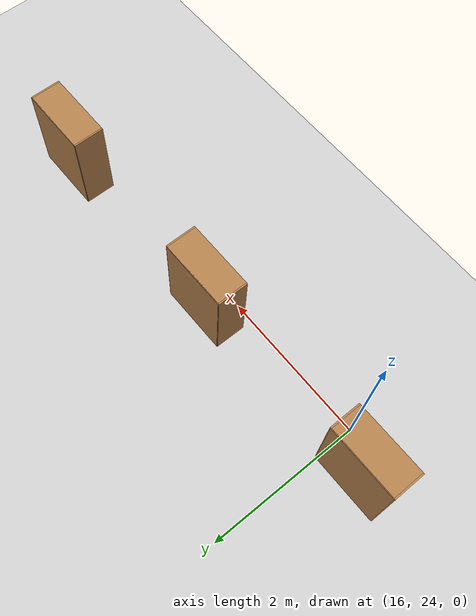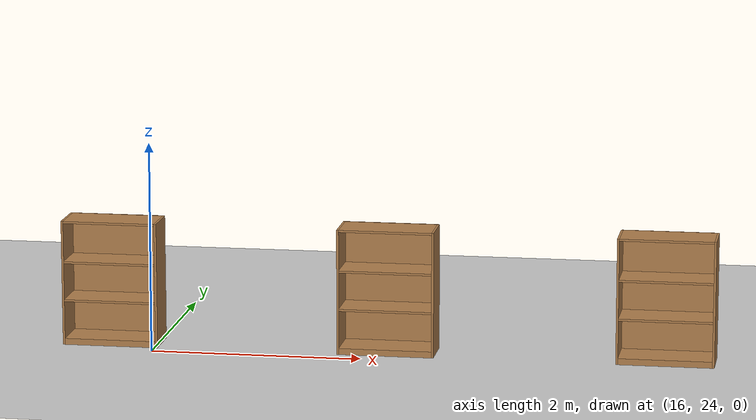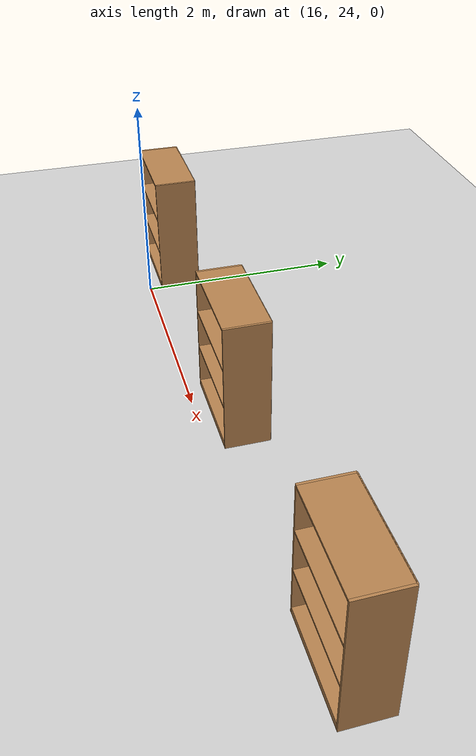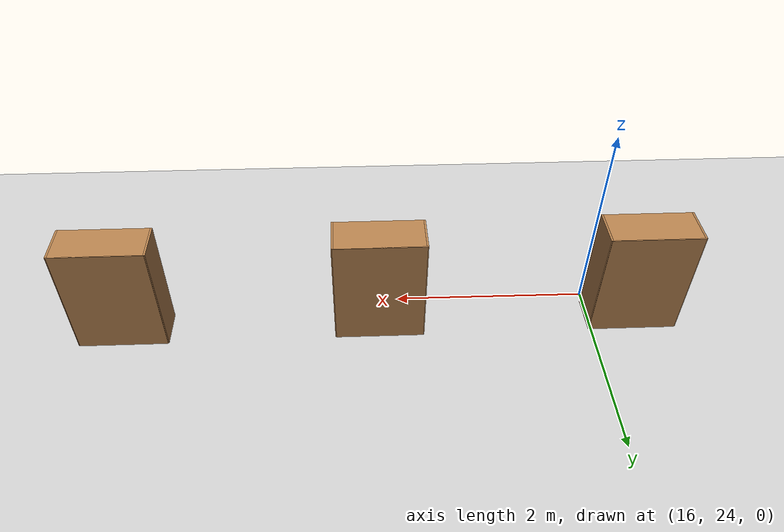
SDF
<sdf version="1.7">
 <world name="simulate_indoor">
  <model name="ground_plane">
   <static>1</static>
   <link name="link">
    <collision name="collision">
     <geometry><plane><normal>0 0 1</normal><size>100 100</size></plane></geometry>
     <surface>
      <contact><collide_bitmask>65535</collide_bitmask></contact>
      <friction><ode><mu>100</mu><mu2>50</mu2></ode></friction>
     </surface>
    </collision>
    <visual name="visual">
     <cast_shadows>0</cast_shadows>
     <geometry><plane><normal>0 0 1</normal><size>100 100</size></plane></geometry>
     <material>
      <script><uri>file://media/materials/scripts/gazebo.material</uri><name>Gazebo/Grey</name></script>
     </material>
    </visual>
   </link>
  </model>
  <model name="Bookshelf_0_clone_0">
   <static>1</static>
   <link name="link">
    <inertial><mass>1</mass></inertial>
    <collision name="back">
     <pose>0 0.005 0.6 0 -0 0</pose>
     <geometry><box><size>0.9 0.01 1.2</size></box></geometry>
    </collision>
    <visual name="visual1">
     <pose>0 0.005 0.6 0 -0 0</pose>
     <geometry><box><size>0.9 0.01 1.2</size></box></geometry>
     <material>
      <diffuse>1 1 1 1</diffuse>
      <script><uri>file://media/materials/scripts/gazebo.material</uri><name>Gazebo/Wood</name></script>
      <pbr><metal><albedo_map>model://Bookshelf/bookshelf_diffuse.jpg</albedo_map></metal></pbr>
     </material>
    </visual>
    <collision name="left_side">
     <pose>0.45 -0.195 0.6 0 -0 0</pose>
     <geometry><box><size>0.02 0.4 1.2</size></box></geometry>
    </collision>
    <visual name="visual2">
     <pose>0.45 -0.195 0.6 0 -0 0</pose>
     <geometry><box><size>0.02 0.4 1.2</size></box></geometry>
     <material>
      <diffuse>1 1 1 1</diffuse>
      <script><uri>file://media/materials/scripts/gazebo.material</uri><name>Gazebo/Wood</name></script>
      <pbr><metal><albedo_map>model://Bookshelf/bookshelf_diffuse.jpg</albedo_map></metal></pbr>
     </material>
    </visual>
    <collision name="right_side">
     <pose>-0.45 -0.195 0.6 0 -0 0</pose>
     <geometry><box><size>0.02 0.4 1.2</size></box></geometry>
    </collision>
    <visual name="visual3">
     <pose>-0.45 -0.195 0.6 0 -0 0</pose>
     <geometry><box><size>0.02 0.4 1.2</size></box></geometry>
     <material>
      <diffuse>1 1 1 1</diffuse>
      <script><uri>file://media/materials/scripts/gazebo.material</uri><name>Gazebo/Wood</name></script>
      <pbr><metal><albedo_map>model://Bookshelf/bookshelf_diffuse.jpg</albedo_map></metal></pbr>
     </material>
    </visual>
    <collision name="bottom">
     <pose>0 -0.195 0.03 0 -0 0</pose>
     <geometry><box><size>0.88 0.4 0.06</size></box></geometry>
    </collision>
    <visual name="visual4">
     <pose>0 -0.195 0.03 0 -0 0</pose>
     <geometry><box><size>0.88 0.4 0.06</size></box></geometry>
     <material>
      <diffuse>1 1 1 1</diffuse>
      <script><uri>file://media/materials/scripts/gazebo.material</uri><name>Gazebo/Wood</name></script>
      <pbr><metal><albedo_map>model://Bookshelf/bookshelf_diffuse.jpg</albedo_map></metal></pbr>
     </material>
    </visual>
    <collision name="top">
     <pose>0 -0.195 1.19 0 -0 0</pose>
     <geometry><box><size>0.88 0.4 0.02</size></box></geometry>
    </collision>
    <visual name="visual5">
     <pose>0 -0.195 1.19 0 -0 0</pose>
     <geometry><box><size>0.88 0.4 0.02</size></box></geometry>
     <material>
      <diffuse>1 1 1 1</diffuse>
      <script><uri>file://media/materials/scripts/gazebo.material</uri><name>Gazebo/Wood</name></script>
      <pbr><metal><albedo_map>model://Bookshelf/bookshelf_diffuse.jpg</albedo_map></metal></pbr>
     </material>
    </visual>
    <collision name="low_shelf">
     <pose>0 -0.195 0.43 0 -0 0</pose>
     <geometry><box><size>0.88 0.4 0.02</size></box></geometry>
    </collision>
    <visual name="visual6">
     <pose>0 -0.195 0.43 0 -0 0</pose>
     <geometry><box><size>0.88 0.4 0.02</size></box></geometry>
     <material>
      <diffuse>1 1 1 1</diffuse>
      <script><uri>file://media/materials/scripts/gazebo.material</uri><name>Gazebo/Wood</name></script>
      <pbr><metal><albedo_map>model://Bookshelf/bookshelf_diffuse.jpg</albedo_map></metal></pbr>
     </material>
    </visual>
    <collision name="high_shelf">
     <pose>0 -0.195 0.8 0 -0 0</pose>
     <geometry><box><size>0.88 0.4 0.02</size></box></geometry>
    </collision>
    <visual name="visual7">
     <pose>0 -0.195 0.8 0 -0 0</pose>
     <geometry><box><size>0.88 0.4 0.02</size></box></geometry>
     <material>
      <diffuse>1 1 1 1</diffuse>
      <script><uri>file://media/materials/scripts/gazebo.material</uri><name>Gazebo/Wood</name></script>
      <pbr><metal><albedo_map>model://Bookshelf/bookshelf_diffuse.jpg</albedo_map></metal></pbr>
     </material>
    </visual>
   </link>
   <pose>20.8419 24.5504 0 0 -0 0</pose>
  </model>
  <model name="Bookshelf_0_clone_1">
   <static>1</static>
   <link name="link">
    <inertial><mass>1</mass></inertial>
    <collision name="back">
     <pose>0 0.005 0.6 0 -0 0</pose>
     <geometry><box><size>0.9 0.01 1.2</size></box></geometry>
    </collision>
    <visual name="visual1">
     <pose>0 0.005 0.6 0 -0 0</pose>
     <geometry><box><size>0.9 0.01 1.2</size></box></geometry>
     <material>
      <diffuse>1 1 1 1</diffuse>
      <script><uri>file://media/materials/scripts/gazebo.material</uri><name>Gazebo/Wood</name></script>
      <pbr><metal><albedo_map>model://Bookshelf/bookshelf_diffuse.jpg</albedo_map></metal></pbr>
     </material>
    </visual>
    <collision name="left_side">
     <pose>0.45 -0.195 0.6 0 -0 0</pose>
     <geometry><box><size>0.02 0.4 1.2</size></box></geometry>
    </collision>
    <visual name="visual2">
     <pose>0.45 -0.195 0.6 0 -0 0</pose>
     <geometry><box><size>0.02 0.4 1.2</size></box></geometry>
     <material>
      <diffuse>1 1 1 1</diffuse>
      <script><uri>file://media/materials/scripts/gazebo.material</uri><name>Gazebo/Wood</name></script>
      <pbr><metal><albedo_map>model://Bookshelf/bookshelf_diffuse.jpg</albedo_map></metal></pbr>
     </material>
    </visual>
    <collision name="right_side">
     <pose>-0.45 -0.195 0.6 0 -0 0</pose>
     <geometry><box><size>0.02 0.4 1.2</size></box></geometry>
    </collision>
    <visual name="visual3">
     <pose>-0.45 -0.195 0.6 0 -0 0</pose>
     <geometry><box><size>0.02 0.4 1.2</size></box></geometry>
     <material>
      <diffuse>1 1 1 1</diffuse>
      <script><uri>file://media/materials/scripts/gazebo.material</uri><name>Gazebo/Wood</name></script>
      <pbr><metal><albedo_map>model://Bookshelf/bookshelf_diffuse.jpg</albedo_map></metal></pbr>
     </material>
    </visual>
    <collision name="bottom">
     <pose>0 -0.195 0.03 0 -0 0</pose>
     <geometry><box><size>0.88 0.4 0.06</size></box></geometry>
    </collision>
    <visual name="visual4">
     <pose>0 -0.195 0.03 0 -0 0</pose>
     <geometry><box><size>0.88 0.4 0.06</size></box></geometry>
     <material>
      <diffuse>1 1 1 1</diffuse>
      <script><uri>file://media/materials/scripts/gazebo.material</uri><name>Gazebo/Wood</name></script>
      <pbr><metal><albedo_map>model://Bookshelf/bookshelf_diffuse.jpg</albedo_map></metal></pbr>
     </material>
    </visual>
    <collision name="top">
     <pose>0 -0.195 1.19 0 -0 0</pose>
     <geometry><box><size>0.88 0.4 0.02</size></box></geometry>
    </collision>
    <visual name="visual5">
     <pose>0 -0.195 1.19 0 -0 0</pose>
     <geometry><box><size>0.88 0.4 0.02</size></box></geometry>
     <material>
      <diffuse>1 1 1 1</diffuse>
      <script><uri>file://media/materials/scripts/gazebo.material</uri><name>Gazebo/Wood</name></script>
      <pbr><metal><albedo_map>model://Bookshelf/bookshelf_diffuse.jpg</albedo_map></metal></pbr>
     </material>
    </visual>
    <collision name="low_shelf">
     <pose>0 -0.195 0.43 0 -0 0</pose>
     <geometry><box><size>0.88 0.4 0.02</size></box></geometry>
    </collision>
    <visual name="visual6">
     <pose>0 -0.195 0.43 0 -0 0</pose>
     <geometry><box><size>0.88 0.4 0.02</size></box></geometry>
     <material>
      <diffuse>1 1 1 1</diffuse>
      <script><uri>file://media/materials/scripts/gazebo.material</uri><name>Gazebo/Wood</name></script>
      <pbr><metal><albedo_map>model://Bookshelf/bookshelf_diffuse.jpg</albedo_map></metal></pbr>
     </material>
    </visual>
    <collision name="high_shelf">
     <pose>0 -0.195 0.8 0 -0 0</pose>
     <geometry><box><size>0.88 0.4 0.02</size></box></geometry>
    </collision>
    <visual name="visual7">
     <pose>0 -0.195 0.8 0 -0 0</pose>
     <geometry><box><size>0.88 0.4 0.02</size></box></geometry>
     <material>
      <diffuse>1 1 1 1</diffuse>
      <script><uri>file://media/materials/scripts/gazebo.material</uri><name>Gazebo/Wood</name></script>
      <pbr><metal><albedo_map>model://Bookshelf/bookshelf_diffuse.jpg</albedo_map></metal></pbr>
     </material>
    </visual>
   </link>
   <pose>18.2097 24.5275 0 0 -0 0</pose>
  </model>
  <model name="Bookshelf_0_clone_2">
   <static>1</static>
   <link name="link">
    <inertial><mass>1</mass></inertial>
    <collision name="back">
     <pose>0 0.005 0.6 0 -0 0</pose>
     <geometry><box><size>0.9 0.01 1.2</size></box></geometry>
    </collision>
    <visual name="visual1">
     <pose>0 0.005 0.6 0 -0 0</pose>
     <geometry><box><size>0.9 0.01 1.2</size></box></geometry>
     <material>
      <diffuse>1 1 1 1</diffuse>
      <script><uri>file://media/materials/scripts/gazebo.material</uri><name>Gazebo/Wood</name></script>
      <pbr><metal><albedo_map>model://Bookshelf/bookshelf_diffuse.jpg</albedo_map></metal></pbr>
     </material>
    </visual>
    <collision name="left_side">
     <pose>0.45 -0.195 0.6 0 -0 0</pose>
     <geometry><box><size>0.02 0.4 1.2</size></box></geometry>
    </collision>
    <visual name="visual2">
     <pose>0.45 -0.195 0.6 0 -0 0</pose>
     <geometry><box><size>0.02 0.4 1.2</size></box></geometry>
     <material>
      <diffuse>1 1 1 1</diffuse>
      <script><uri>file://media/materials/scripts/gazebo.material</uri><name>Gazebo/Wood</name></script>
      <pbr><metal><albedo_map>model://Bookshelf/bookshelf_diffuse.jpg</albedo_map></metal></pbr>
     </material>
    </visual>
    <collision name="right_side">
     <pose>-0.45 -0.195 0.6 0 -0 0</pose>
     <geometry><box><size>0.02 0.4 1.2</size></box></geometry>
    </collision>
    <visual name="visual3">
     <pose>-0.45 -0.195 0.6 0 -0 0</pose>
     <geometry><box><size>0.02 0.4 1.2</size></box></geometry>
     <material>
      <diffuse>1 1 1 1</diffuse>
      <script><uri>file://media/materials/scripts/gazebo.material</uri><name>Gazebo/Wood</name></script>
      <pbr><metal><albedo_map>model://Bookshelf/bookshelf_diffuse.jpg</albedo_map></metal></pbr>
     </material>
    </visual>
    <collision name="bottom">
     <pose>0 -0.195 0.03 0 -0 0</pose>
     <geometry><box><size>0.88 0.4 0.06</size></box></geometry>
    </collision>
    <visual name="visual4">
     <pose>0 -0.195 0.03 0 -0 0</pose>
     <geometry><box><size>0.88 0.4 0.06</size></box></geometry>
     <material>
      <diffuse>1 1 1 1</diffuse>
      <script><uri>file://media/materials/scripts/gazebo.material</uri><name>Gazebo/Wood</name></script>
      <pbr><metal><albedo_map>model://Bookshelf/bookshelf_diffuse.jpg</albedo_map></metal></pbr>
     </material>
    </visual>
    <collision name="top">
     <pose>0 -0.195 1.19 0 -0 0</pose>
     <geometry><box><size>0.88 0.4 0.02</size></box></geometry>
    </collision>
    <visual name="visual5">
     <pose>0 -0.195 1.19 0 -0 0</pose>
     <geometry><box><size>0.88 0.4 0.02</size></box></geometry>
     <material>
      <diffuse>1 1 1 1</diffuse>
      <script><uri>file://media/materials/scripts/gazebo.material</uri><name>Gazebo/Wood</name></script>
      <pbr><metal><albedo_map>model://Bookshelf/bookshelf_diffuse.jpg</albedo_map></metal></pbr>
     </material>
    </visual>
    <collision name="low_shelf">
     <pose>0 -0.195 0.43 0 -0 0</pose>
     <geometry><box><size>0.88 0.4 0.02</size></box></geometry>
    </collision>
    <visual name="visual6">
     <pose>0 -0.195 0.43 0 -0 0</pose>
     <geometry><box><size>0.88 0.4 0.02</size></box></geometry>
     <material>
      <diffuse>1 1 1 1</diffuse>
      <script><uri>file://media/materials/scripts/gazebo.material</uri><name>Gazebo/Wood</name></script>
      <pbr><metal><albedo_map>model://Bookshelf/bookshelf_diffuse.jpg</albedo_map></metal></pbr>
     </material>
    </visual>
    <collision name="high_shelf">
     <pose>0 -0.195 0.8 0 -0 0</pose>
     <geometry><box><size>0.88 0.4 0.02</size></box></geometry>
    </collision>
    <visual name="visual7">
     <pose>0 -0.195 0.8 0 -0 0</pose>
     <geometry><box><size>0.88 0.4 0.02</size></box></geometry>
     <material>
      <diffuse>1 1 1 1</diffuse>
      <script><uri>file://media/materials/scripts/gazebo.material</uri><name>Gazebo/Wood</name></script>
      <pbr><metal><albedo_map>model://Bookshelf/bookshelf_diffuse.jpg</albedo_map></metal></pbr>
     </material>
    </visual>
   </link>
   <pose>15.566 24.5124 0 0 -0 0</pose>
  </model>
 </world>
</sdf>
